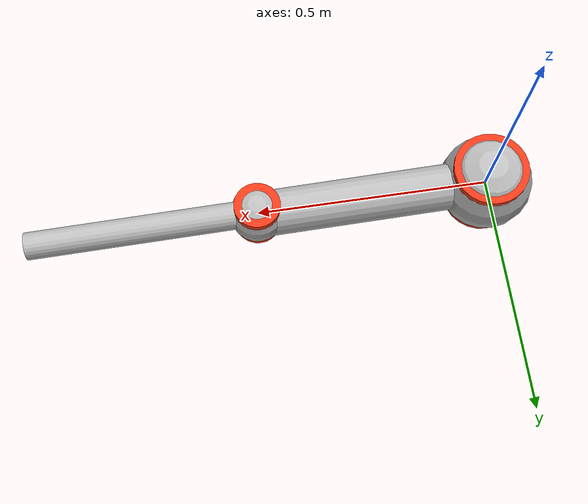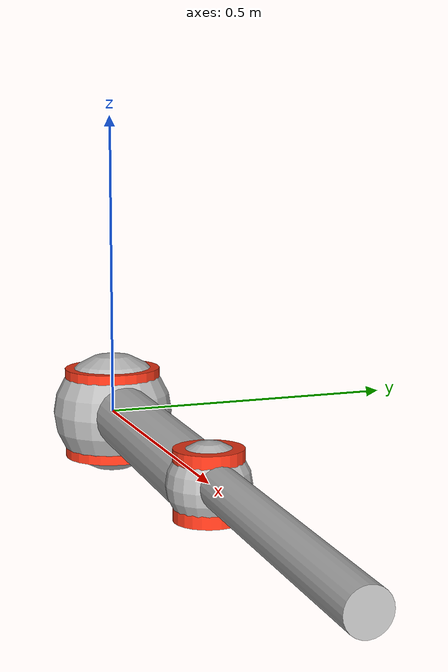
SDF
<?xml version='1.0'?>
<sdf version='1.9'>
    <model name="2R_planar_robot">
        <static>false</static>

        <link name="l1">
            <pose>0 0 0 0 0 0</pose>
            <collision name="l1_collision">
                <geometry>
                    <cylinder>
                        <radius>0.07</radius>
                        <length>0.5</length>
                    </cylinder>
                </geometry>
            </collision>

            <visual name="l1_visual">
                <pose>0.25 0 0 0 1.6 0</pose>
                <geometry>
                    <cylinder>
                        <radius>0.05</radius>
                        <length>0.5</length>
                    </cylinder>
                </geometry>
            </visual>
            <visual name="l1_joint_case">
                <geometry>
                    <cylinder>
                        <radius>0.08</radius>
                        <length>0.15</length>
                    </cylinder>
                </geometry>
                <material>
                    <diffuse>0.98 0.22 0.1 1</diffuse>
                </material>
            </visual>
            <visual name="l1_joint_case_pt2">
                <geometry>
                    <sphere>
                        <radius>0.1</radius>
                    </sphere>
                </geometry>
            </visual>

        </link>

        <link name="l2">
            <pose relative_to='l1'>0.5 0 0 0 0 0</pose>
            <collision name="l2_collision">
                <geometry>
                    <cylinder>
                        <radius>0.07</radius>
                        <length>0.5</length>
                    </cylinder>
                </geometry>
            </collision>

            <visual name="l2_visual">
                <pose>0.25 0 0.0 0 1.6 0 </pose>
                <geometry>
                    <cylinder>
                        <radius>0.03</radius>
                        <length>0.5</length>
                    </cylinder>
                </geometry>
            </visual>
            <visual name="l2_joint_case">
                <geometry>
                    <cylinder>
                        <radius>0.05</radius>
                        <length>0.1</length>
                    </cylinder>
                </geometry>
                 <material>
                    <diffuse>0.98 0.22 0.1 1</diffuse>
                </material>
            </visual>
            <visual name="l2_joint_case_pt2">
                <geometry>
                    <sphere>
                        <radius>0.06</radius>
                    </sphere>
                </geometry>
            </visual>

        </link>

        <link name="end-effector">
            <pose relative_to='l2'>0.5 0 0 0 0 0</pose>
        </link>

        <joint name='q1' type='revolute'>
            <parent>world</parent>
            <child>l1</child>
            <pose relative_to="l1">0 0 0  0 0 0 </pose>
            <axis>
                <xyz>0 0 1</xyz>
                <limit>
                    <lower>0.0</lower>
                    <upper>3.14</upper>
                </limit>
            </axis>
        </joint>

        <joint name='q2' type='revolute'>
            <parent>l1</parent>
            <child>l2</child>
            <pose relative_to='l2'>0 0 0 0 0 0</pose>
            <axis>
                <xyz>0 0 1</xyz>
                <limit>
                    <lower>0</lower>
                    <upper>3.14</upper>
                </limit>
            </axis>
        </joint>

    </model>
</sdf>
